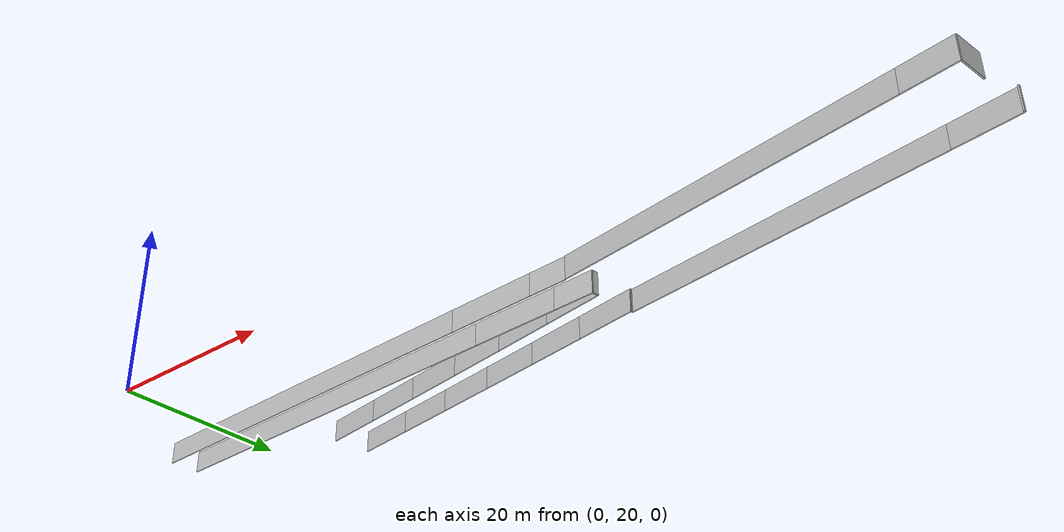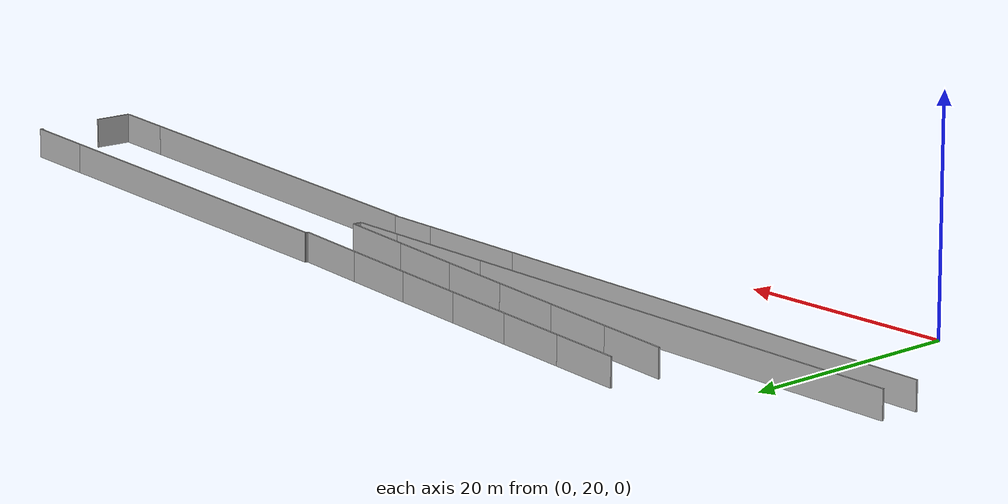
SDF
<?xml version="1.0" ?>
<sdf version="1.6">
  <model name="sps_1601">
    <pose frame="">0 0 0 0 -0 0</pose>
    <static>1</static>
    <self_collide>0</self_collide>
    <allow_auto_disable>0</allow_auto_disable>
    <link name="Wall55">
      <kinematic>0</kinematic>
      <gravity>1</gravity>
      <self_collide>0</self_collide>
      <collision name="collision">
        <geometry>
          <box>
            <size>0.223842 0.15 2.5</size>
          </box>
        </geometry>
        <pose frame="">0 0 0 0 -0 0</pose>
      </collision>
      <visual name="visual">
        <geometry>
          <box>
            <size>0.223842 0.15 2.5</size>
          </box>
        </geometry>
        <pose frame="">0 0 0 0 -0 0</pose>
        <cast_shadows>1</cast_shadows>
        <transparency>0.0</transparency>
      </visual>
      <pose frame="">50.2262 40.7122 1.25 0 -0 1.43569</pose>
    </link>
    <link name="Wall56">
      <kinematic>0</kinematic>
      <gravity>1</gravity>
      <self_collide>0</self_collide>
      <collision name="collision">
        <geometry>
          <box>
            <size>5.23191 0.15 2.5</size>
          </box>
        </geometry>
        <pose frame="">0 0 0 0 -0 0</pose>
      </collision>
      <visual name="visual">
        <geometry>
          <box>
            <size>5.23191 0.15 2.5</size>
          </box>
        </geometry>
        <pose frame="">0 0 0 0 -0 0</pose>
        <cast_shadows>1</cast_shadows>
        <transparency>0.0</transparency>
      </visual>
      <pose frame="">87.0614 26.7793 1.25 0 -0 3.00593</pose>
    </link>
    <link name="Wall57">
      <kinematic>0</kinematic>
      <gravity>1</gravity>
      <self_collide>0</self_collide>
      <collision name="collision">
        <geometry>
          <box>
            <size>35.7652 0.15 2.5</size>
          </box>
        </geometry>
        <pose frame="">0 0 0 0 -0 0</pose>
      </collision>
      <visual name="visual">
        <geometry>
          <box>
            <size>35.7652 0.15 2.5</size>
          </box>
        </geometry>
        <pose frame="">0 0 0 0 -0 0</pose>
        <cast_shadows>1</cast_shadows>
        <transparency>0.0</transparency>
      </visual>
      <pose frame="">66.7512 29.5517 1.25 0 -0 3.00593</pose>
    </link>
    <link name="Wall242">
      <kinematic>0</kinematic>
      <gravity>1</gravity>
      <self_collide>0</self_collide>
      <collision name="collision">
        <geometry>
          <box>
            <size>3.15054 0.15 2.5</size>
          </box>
        </geometry>
        <pose frame="">0 0 0 0 -0 0</pose>
      </collision>
      <visual name="visual">
        <geometry>
          <box>
            <size>3.15054 0.15 2.5</size>
          </box>
        </geometry>
        <pose frame="">0 0 0 0 -0 0</pose>
        <cast_shadows>1</cast_shadows>
        <transparency>0.0</transparency>
      </visual>
      <pose frame="">89.8664 27.9863 1.25 0 -0 1.43512</pose>
    </link>
    <link name="Wall375">
      <kinematic>0</kinematic>
      <gravity>1</gravity>
      <self_collide>0</self_collide>
      <collision name="collision">
        <geometry>
          <box>
            <size>34.5497 0.15 2.5</size>
          </box>
        </geometry>
        <pose frame="">0 0 0 0 -0 0</pose>
      </collision>
      <visual name="visual">
        <geometry>
          <box>
            <size>34.5497 0.15 2.5</size>
          </box>
        </geometry>
        <pose frame="">0 0 0 0 -0 0</pose>
        <cast_shadows>1</cast_shadows>
        <transparency>0.0</transparency>
      </visual>
      <pose frame="">67.3553 38.4719 1.25 0 0 -0.13653</pose>
    </link>
    <link name="Wall376">
      <kinematic>0</kinematic>
      <gravity>1</gravity>
      <self_collide>0</self_collide>
      <collision name="collision">
        <geometry>
          <box>
            <size>6.44739 0.15 2.5</size>
          </box>
        </geometry>
        <pose frame="">0 0 0 0 -0 0</pose>
      </collision>
      <visual name="visual">
        <geometry>
          <box>
            <size>6.44739 0.15 2.5</size>
          </box>
        </geometry>
        <pose frame="">0 0 0 0 -0 0</pose>
        <cast_shadows>1</cast_shadows>
        <transparency>0.0</transparency>
      </visual>
      <pose frame="">87.6631 35.6819 1.25 0 0 -0.13653</pose>
    </link>
    <link name="Wall563">
      <kinematic>0</kinematic>
      <gravity>1</gravity>
      <self_collide>0</self_collide>
      <collision name="collision">
        <geometry>
          <box>
            <size>10.3343 0.15 2.5</size>
          </box>
        </geometry>
        <pose frame="">0 0 0 0 -0 0</pose>
      </collision>
      <visual name="visual">
        <geometry>
          <box>
            <size>10.3343 0.15 2.5</size>
          </box>
        </geometry>
        <pose frame="">0 0 0 0 -0 0</pose>
        <cast_shadows>1</cast_shadows>
        <transparency>0.0</transparency>
      </visual>
      <pose frame="">39.6306 35.973 1.25 0 -0 3.09366</pose>
    </link>
    <link name="Wall564">
      <kinematic>0</kinematic>
      <gravity>1</gravity>
      <self_collide>0</self_collide>
      <collision name="collision">
        <geometry>
          <box>
            <size>45.8164 0.15 2.5</size>
          </box>
        </geometry>
        <pose frame="">0 0 0 0 -0 0</pose>
      </collision>
      <visual name="visual">
        <geometry>
          <box>
            <size>45.8164 0.15 2.5</size>
          </box>
        </geometry>
        <pose frame="">0 0 0 0 -0 0</pose>
        <cast_shadows>1</cast_shadows>
        <transparency>0.0</transparency>
      </visual>
      <pose frame="">11.5875 37.3181 1.25 0 -0 3.09366</pose>
    </link>
    <link name="Wall565">
      <kinematic>0</kinematic>
      <gravity>1</gravity>
      <self_collide>0</self_collide>
      <collision name="collision">
        <geometry>
          <box>
            <size>0.0628653 0.15 2.5</size>
          </box>
        </geometry>
        <pose frame="">0 0 0 0 -0 0</pose>
      </collision>
      <visual name="visual">
        <geometry>
          <box>
            <size>0.0628653 0.15 2.5</size>
          </box>
        </geometry>
        <pose frame="">0 0 0 0 -0 0</pose>
        <cast_shadows>1</cast_shadows>
        <transparency>0.0</transparency>
      </visual>
      <pose frame="">49.0368 32.0015 1.25 0 -0 1.4462</pose>
    </link>
    <link name="Wall634">
      <kinematic>0</kinematic>
      <gravity>1</gravity>
      <self_collide>0</self_collide>
      <collision name="collision">
        <geometry>
          <box>
            <size>10.1655 0.15 2.5</size>
          </box>
        </geometry>
        <pose frame="">0 0 0 0 -0 0</pose>
      </collision>
      <visual name="visual">
        <geometry>
          <box>
            <size>10.1655 0.15 2.5</size>
          </box>
        </geometry>
        <pose frame="">0 0 0 0 -0 0</pose>
        <cast_shadows>1</cast_shadows>
        <transparency>0.0</transparency>
      </visual>
      <pose frame="">39.5463 32.4729 1.25 0 -0 3.09365</pose>
    </link>
    <link name="Wall635">
      <kinematic>0</kinematic>
      <gravity>1</gravity>
      <self_collide>0</self_collide>
      <collision name="collision">
        <geometry>
          <box>
            <size>45.9447 0.15 2.5</size>
          </box>
        </geometry>
        <pose frame="">0 0 0 0 -0 0</pose>
      </collision>
      <visual name="visual">
        <geometry>
          <box>
            <size>45.9447 0.15 2.5</size>
          </box>
        </geometry>
        <pose frame="">0 0 0 0 -0 0</pose>
        <cast_shadows>1</cast_shadows>
        <transparency>0.0</transparency>
      </visual>
      <pose frame="">11.5235 33.8173 1.25 0 -0 3.09365</pose>
    </link>
    <link name="Wall636">
      <kinematic>0</kinematic>
      <gravity>1</gravity>
      <self_collide>0</self_collide>
      <collision name="collision">
        <geometry>
          <box>
            <size>4.42179 0.15 2.5</size>
          </box>
        </geometry>
        <pose frame="">0 0 0 0 -0 0</pose>
      </collision>
      <visual name="visual">
        <geometry>
          <box>
            <size>4.42179 0.15 2.5</size>
          </box>
        </geometry>
        <pose frame="">0 0 0 0 -0 0</pose>
        <cast_shadows>1</cast_shadows>
        <transparency>0.0</transparency>
      </visual>
      <pose frame="">46.832 32.131 1.25 0 -0 3.0971</pose>
    </link>
    <link name="Wall637">
      <kinematic>0</kinematic>
      <gravity>1</gravity>
      <self_collide>0</self_collide>
      <collision name="collision">
        <geometry>
          <box>
            <size>4.69063 0.15 2.5</size>
          </box>
        </geometry>
        <pose frame="">0 0 0 0 -0 0</pose>
      </collision>
      <visual name="visual">
        <geometry>
          <box>
            <size>4.69063 0.15 2.5</size>
          </box>
        </geometry>
        <pose frame="">0 0 0 0 -0 0</pose>
        <cast_shadows>1</cast_shadows>
        <transparency>0.0</transparency>
      </visual>
      <pose frame="">47.1345 35.6131 1.25 0 -0 3.09365</pose>
    </link>
    <link name="Wall638">
      <kinematic>0</kinematic>
      <gravity>1</gravity>
      <self_collide>0</self_collide>
      <collision name="collision">
        <geometry>
          <box>
            <size>0.711866 0.15 2.5</size>
          </box>
        </geometry>
        <pose frame="">0 0 0 0 -0 0</pose>
      </collision>
      <visual name="visual">
        <geometry>
          <box>
            <size>0.711866 0.15 2.5</size>
          </box>
        </geometry>
        <pose frame="">0 0 0 0 -0 0</pose>
        <cast_shadows>1</cast_shadows>
        <transparency>0.0</transparency>
      </visual>
      <pose frame="">49.5285 35.8529 1.25 0 0 -1.71569</pose>
    </link>
    <link name="Wall639">
      <kinematic>0</kinematic>
      <gravity>1</gravity>
      <self_collide>0</self_collide>
      <collision name="collision">
        <geometry>
          <box>
            <size>0.248917 0.15 2.5</size>
          </box>
        </geometry>
        <pose frame="">0 0 0 0 -0 0</pose>
      </collision>
      <visual name="visual">
        <geometry>
          <box>
            <size>0.248917 0.15 2.5</size>
          </box>
        </geometry>
        <pose frame="">0 0 0 0 -0 0</pose>
        <cast_shadows>1</cast_shadows>
        <transparency>0.0</transparency>
      </visual>
      <pose frame="">90.84 35.1198 1.25 0 -0 1.43552</pose>
    </link>
    <link name="Wall7228">
      <kinematic>0</kinematic>
      <gravity>1</gravity>
      <self_collide>0</self_collide>
      <collision name="collision">
        <geometry>
          <box>
            <size>7.08758 0.15 2.5</size>
          </box>
        </geometry>
        <pose frame="">0 0 0 0 -0 0</pose>
      </collision>
      <visual name="visual">
        <geometry>
          <box>
            <size>7.08758 0.15 2.5</size>
          </box>
        </geometry>
        <pose frame="">0 0 0 0 -0 0</pose>
        <cast_shadows>1</cast_shadows>
        <transparency>0.0</transparency>
      </visual>
      <pose frame="">11.0952 42.408 1.25 0 0 -0.154259</pose>
    </link>
    <link name="Wall7229">
      <kinematic>0</kinematic>
      <gravity>1</gravity>
      <self_collide>0</self_collide>
      <collision name="collision">
        <geometry>
          <box>
            <size>7.08755 0.15 2.5</size>
          </box>
        </geometry>
        <pose frame="">0 0 0 0 -0 0</pose>
      </collision>
      <visual name="visual">
        <geometry>
          <box>
            <size>7.08755 0.15 2.5</size>
          </box>
        </geometry>
        <pose frame="">0 0 0 0 -0 0</pose>
        <cast_shadows>1</cast_shadows>
        <transparency>0.0</transparency>
      </visual>
      <pose frame="">18.0975 41.3119 1.25 0 0 -0.15629</pose>
    </link>
    <link name="Wall7230">
      <kinematic>0</kinematic>
      <gravity>1</gravity>
      <self_collide>0</self_collide>
      <collision name="collision">
        <geometry>
          <box>
            <size>7.0875 0.15 2.5</size>
          </box>
        </geometry>
        <pose frame="">0 0 0 0 -0 0</pose>
      </collision>
      <visual name="visual">
        <geometry>
          <box>
            <size>7.0875 0.15 2.5</size>
          </box>
        </geometry>
        <pose frame="">0 0 0 0 -0 0</pose>
        <cast_shadows>1</cast_shadows>
        <transparency>0.0</transparency>
      </visual>
      <pose frame="">25.0975 40.2015 1.25 0 0 -0.15834</pose>
    </link>
    <link name="Wall7231">
      <kinematic>0</kinematic>
      <gravity>1</gravity>
      <self_collide>0</self_collide>
      <collision name="collision">
        <geometry>
          <box>
            <size>7.08754 0.15 2.5</size>
          </box>
        </geometry>
        <pose frame="">0 0 0 0 -0 0</pose>
      </collision>
      <visual name="visual">
        <geometry>
          <box>
            <size>7.08754 0.15 2.5</size>
          </box>
        </geometry>
        <pose frame="">0 0 0 0 -0 0</pose>
        <cast_shadows>1</cast_shadows>
        <transparency>0.0</transparency>
      </visual>
      <pose frame="">32.0952 39.0768 1.25 0 0 -0.16038</pose>
    </link>
    <link name="Wall7232">
      <kinematic>0</kinematic>
      <gravity>1</gravity>
      <self_collide>0</self_collide>
      <collision name="collision">
        <geometry>
          <box>
            <size>7.08765 0.15 2.5</size>
          </box>
        </geometry>
        <pose frame="">0 0 0 0 -0 0</pose>
      </collision>
      <visual name="visual">
        <geometry>
          <box>
            <size>7.08765 0.15 2.5</size>
          </box>
        </geometry>
        <pose frame="">0 0 0 0 -0 0</pose>
        <cast_shadows>1</cast_shadows>
        <transparency>0.0</transparency>
      </visual>
      <pose frame="">39.0907 37.9379 1.25 0 0 -0.162402</pose>
    </link>
    <link name="Wall7233">
      <kinematic>0</kinematic>
      <gravity>1</gravity>
      <self_collide>0</self_collide>
      <collision name="collision">
        <geometry>
          <box>
            <size>7.08754 0.15 2.5</size>
          </box>
        </geometry>
        <pose frame="">0 0 0 0 -0 0</pose>
      </collision>
      <visual name="visual">
        <geometry>
          <box>
            <size>7.08754 0.15 2.5</size>
          </box>
        </geometry>
        <pose frame="">0 0 0 0 -0 0</pose>
        <cast_shadows>1</cast_shadows>
        <transparency>0.0</transparency>
      </visual>
      <pose frame="">46.0839 36.785 1.25 0 0 -0.164377</pose>
    </link>
    <link name="Wall7234">
      <kinematic>0</kinematic>
      <gravity>1</gravity>
      <self_collide>0</self_collide>
      <collision name="collision">
        <geometry>
          <box>
            <size>7.06666 0.15 2.5</size>
          </box>
        </geometry>
        <pose frame="">0 0 0 0 -0 0</pose>
      </collision>
      <visual name="visual">
        <geometry>
          <box>
            <size>7.06666 0.15 2.5</size>
          </box>
        </geometry>
        <pose frame="">0 0 0 0 -0 0</pose>
        <cast_shadows>1</cast_shadows>
        <transparency>0.0</transparency>
      </visual>
      <pose frame="">11.834 46.7469 1.25 0 0 -0.153827</pose>
    </link>
    <link name="Wall7235">
      <kinematic>0</kinematic>
      <gravity>1</gravity>
      <self_collide>0</self_collide>
      <collision name="collision">
        <geometry>
          <box>
            <size>7.06646 0.15 2.5</size>
          </box>
        </geometry>
        <pose frame="">0 0 0 0 -0 0</pose>
      </collision>
      <visual name="visual">
        <geometry>
          <box>
            <size>7.06646 0.15 2.5</size>
          </box>
        </geometry>
        <pose frame="">0 0 0 0 -0 0</pose>
        <cast_shadows>1</cast_shadows>
        <transparency>0.0</transparency>
      </visual>
      <pose frame="">18.8163 45.6589 1.25 0 0 -0.155327</pose>
    </link>
    <link name="Wall7236">
      <kinematic>0</kinematic>
      <gravity>1</gravity>
      <self_collide>0</self_collide>
      <collision name="collision">
        <geometry>
          <box>
            <size>7.06657 0.15 2.5</size>
          </box>
        </geometry>
        <pose frame="">0 0 0 0 -0 0</pose>
      </collision>
      <visual name="visual">
        <geometry>
          <box>
            <size>7.06657 0.15 2.5</size>
          </box>
        </geometry>
        <pose frame="">0 0 0 0 -0 0</pose>
        <cast_shadows>1</cast_shadows>
        <transparency>0.0</transparency>
      </visual>
      <pose frame="">25.7969 44.5603 1.25 0 0 -0.156872</pose>
    </link>
    <link name="Wall7237">
      <kinematic>0</kinematic>
      <gravity>1</gravity>
      <self_collide>0</self_collide>
      <collision name="collision">
        <geometry>
          <box>
            <size>7.06645 0.15 2.5</size>
          </box>
        </geometry>
        <pose frame="">0 0 0 0 -0 0</pose>
      </collision>
      <visual name="visual">
        <geometry>
          <box>
            <size>7.06645 0.15 2.5</size>
          </box>
        </geometry>
        <pose frame="">0 0 0 0 -0 0</pose>
        <cast_shadows>1</cast_shadows>
        <transparency>0.0</transparency>
      </visual>
      <pose frame="">32.7755 43.4492 1.25 0 0 -0.158912</pose>
    </link>
    <link name="Wall7238">
      <kinematic>0</kinematic>
      <gravity>1</gravity>
      <self_collide>0</self_collide>
      <collision name="collision">
        <geometry>
          <box>
            <size>7.06664 0.15 2.5</size>
          </box>
        </geometry>
        <pose frame="">0 0 0 0 -0 0</pose>
      </collision>
      <visual name="visual">
        <geometry>
          <box>
            <size>7.06664 0.15 2.5</size>
          </box>
        </geometry>
        <pose frame="">0 0 0 0 -0 0</pose>
        <cast_shadows>1</cast_shadows>
        <transparency>0.0</transparency>
      </visual>
      <pose frame="">39.7516 42.3223 1.25 0 0 -0.161401</pose>
    </link>
    <link name="Wall7239">
      <kinematic>0</kinematic>
      <gravity>1</gravity>
      <self_collide>0</self_collide>
      <collision name="collision">
        <geometry>
          <box>
            <size>7.06677 0.15 2.5</size>
          </box>
        </geometry>
        <pose frame="">0 0 0 0 -0 0</pose>
      </collision>
      <visual name="visual">
        <geometry>
          <box>
            <size>7.06677 0.15 2.5</size>
          </box>
        </geometry>
        <pose frame="">0 0 0 0 -0 0</pose>
        <cast_shadows>1</cast_shadows>
        <transparency>0.0</transparency>
      </visual>
      <pose frame="">46.7251 41.1779 1.25 0 0 -0.163919</pose>
    </link>
  </model>
</sdf>
